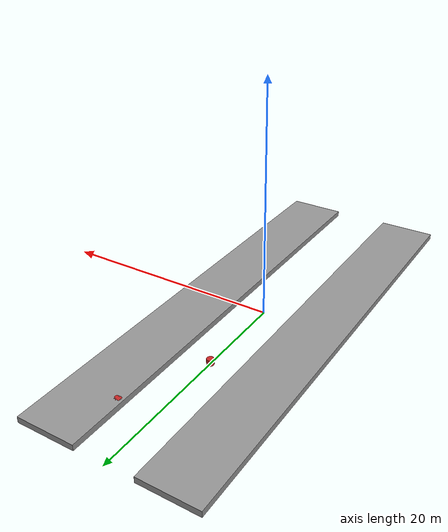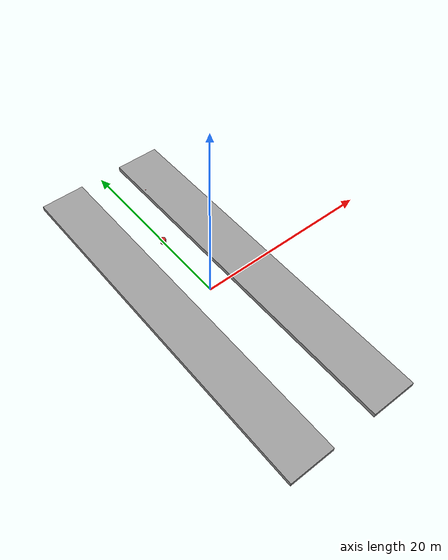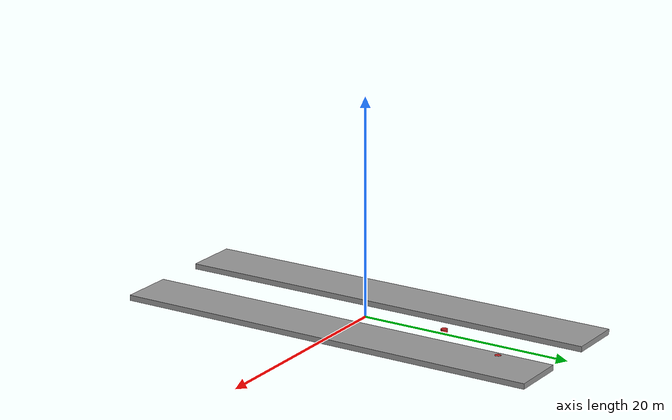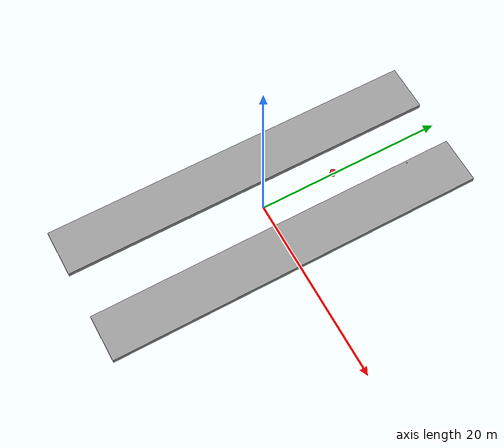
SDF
<?xml version="1.0" ?>
<sdf version="1.6">
  <world name="racetrack_world">
    <!-- Gravity  -->
    <gravity>0 0 -9.8</gravity>

    <!-- Track Boundaries -->
    <model name="track_left_boundary">
      <static>true</static>
      <link name="link">
        <visual name="visual">
          <geometry>
            <box>
              <size>5 40 .5</size> <!-- Adjust size as needed -->
            </box>
          </geometry>
          <material>
            <script>
              <uri>file://media/materials/scripts/gazebo.material</uri>
              <name>Gazebo/Gray</name>
            </script>
          </material>
        </visual>
        <pose>-5 0 0.25 0 0 0</pose> <!-- Position on the left side of the track -->
      </link>
    </model>

    <model name="track_right_boundary">
      <static>true</static>
      <link name="link">
        <visual name="visual">
          <geometry>
            <box>
              <size>5 40 0.5</size> <!-- Adjust size as needed -->
            </box>
          </geometry>
          <material>
            <script>
              <uri>file://media/materials/scripts/gazebo.material</uri>
              <name>Gazebo/Gray</name>
            </script>
          </material>
        </visual>
        <pose>5 0 0.25 0 0 0</pose> <!-- Position on the right side of the track -->
      </link>
    </model>

    <!-- Obstacles -->
    <model name="obstacle_1">
      <static>true</static>
      <link name="link">
        <visual name="visual">
          <geometry>
            <cylinder>
              <radius>0.3</radius>
              <length>0.5</length>
            </cylinder>
          </geometry>
          <material>
            <script>
              <uri>file://media/materials/scripts/gazebo.material</uri>
              <name>Gazebo/Red</name>
            </script>
          </material>
        </visual>
        <pose>0 8 0.25 0 0 0</pose> <!-- Position for the first obstacle -->
      </link>
    </model>

    <model name="obstacle_2">
      <static>true</static>
      <link name="link">
        <visual name="visual">
          <geometry>
            <cylinder>
              <radius>0.3</radius>
              <length>0.5</length>
            </cylinder>
          </geometry>
          <material>
            <script>
              <uri>file://media/materials/scripts/gazebo.material</uri>
              <name>Gazebo/Red</name>
            </script>
          </material>
        </visual>
        <pose>3 15 0.25 0 0 0</pose> <!-- Position for the second obstacle -->
      </link>
    </model>

    <!-- Track Textures and Finishing Touches -->
    <scene>
      <sky>
      </sky>
    </scene>
  </world>
</sdf>
